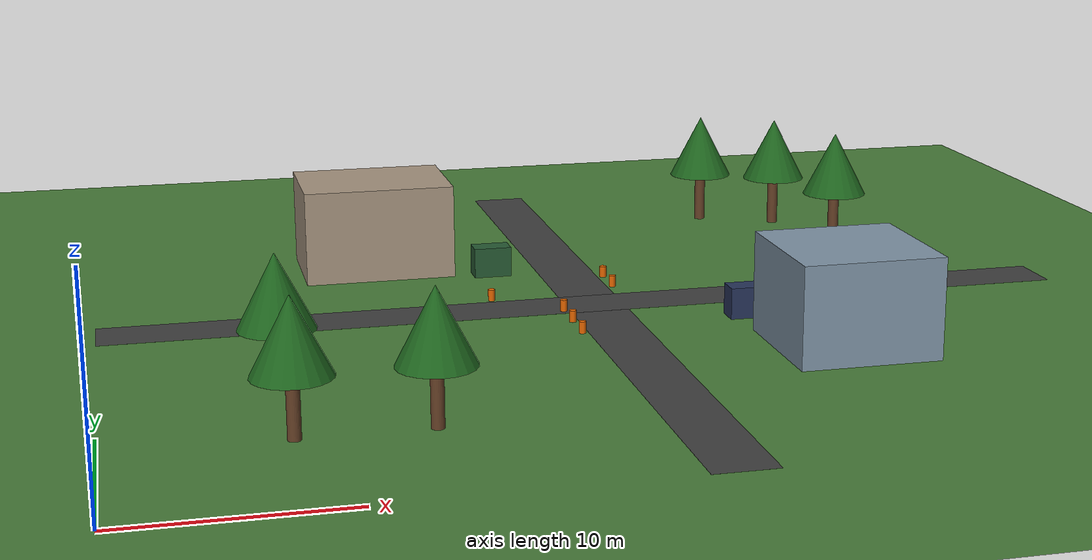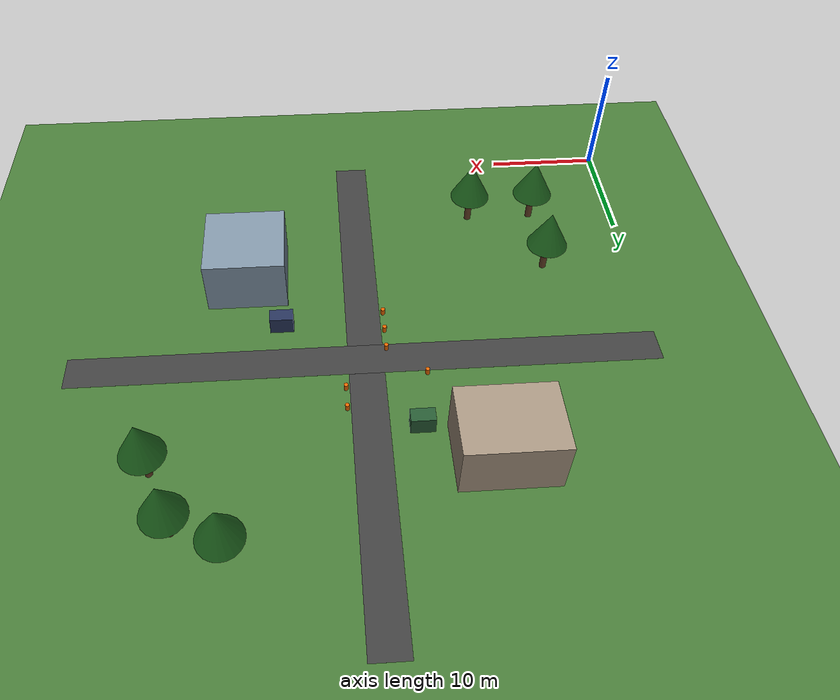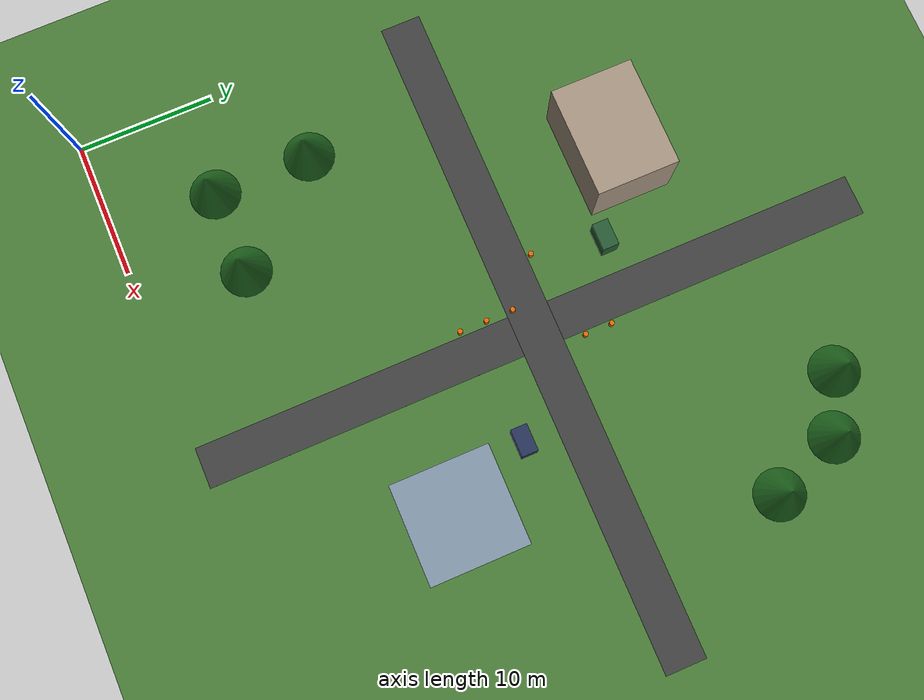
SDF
<sdf version="1.9">
 <world name="outdoor">
  <plugin filename="gz-sim-physics-system" name="gz::sim::systems::Physics"/>
  <plugin filename="gz-sim-user-commands-system" name="gz::sim::systems::UserCommands"/>
  <plugin filename="gz-sim-scene-broadcaster-system" name="gz::sim::systems::SceneBroadcaster"/>
  <plugin filename="gz-sim-sensors-system" name="gz::sim::systems::Sensors">
   <render_engine>ogre2</render_engine>
  </plugin>
  <plugin filename="gz-sim-imu-system" name="gz::sim::systems::Imu"/>
  <gravity>0 0 -9.81</gravity>
  <physics name="outdoor_physics" type="ode">
   <max_step_size>0.002</max_step_size>
   <real_time_factor>1.0</real_time_factor>
   <real_time_update_rate>500</real_time_update_rate>
  </physics>
  <scene>
   <ambient>0.5 0.5 0.5 1.0</ambient>
   <background>0.55 0.65 0.75 1.0</background>
   <shadows>true</shadows>
   <grid>false</grid>
  </scene>
  <light name="sun" type="directional">
   <pose>25 25 30 0.45 -0.35 0.2</pose>
   <direction>-0.4 0.3 -0.85</direction>
   <diffuse>0.95 0.95 0.90 1.0</diffuse>
   <specular>0.4 0.4 0.4 1.0</specular>
   <attenuation><range>100</range></attenuation>
  </light>
  <model name="outdoor_ground">
   <static>true</static>
   <pose>25 25 0 0 0 0</pose>
   <link name="ground_link">
    <collision name="collision">
     <geometry><plane><normal>0 0 1</normal><size>60 60</size></plane></geometry>
     <surface><friction><ode><mu>1.0</mu><mu2>1.0</mu2></ode></friction></surface>
    </collision>
    <visual name="grass_visual">
     <geometry><plane><normal>0 0 1</normal><size>60 60</size></plane></geometry>
     <material><ambient>0.22 0.38 0.18 1</ambient><diffuse>0.28 0.48 0.22 1</diffuse></material>
    </visual>
   </link>
  </model>
  <model name="road_ns">
   <static>true</static>
   <pose>25 25 0.002 0 0 0</pose>
   <link name="road_ns_link">
    <visual name="visual">
     <geometry><plane><normal>0 0 1</normal><size>3 50</size></plane></geometry>
     <material><ambient>0.15 0.15 0.15 1</ambient><diffuse>0.25 0.25 0.25 1</diffuse></material>
    </visual>
   </link>
  </model>
  <model name="road_ew">
   <static>true</static>
   <pose>25 25 0.003 0 0 0</pose>
   <link name="road_ew_link">
    <visual name="visual">
     <geometry><plane><normal>0 0 1</normal><size>50 3</size></plane></geometry>
     <material><ambient>0.15 0.15 0.15 1</ambient><diffuse>0.25 0.25 0.25 1</diffuse></material>
    </visual>
   </link>
  </model>
  <model name="house_1">
   <static>true</static>
   <pose>15 35 2.5 0 0 0</pose>
   <link name="link">
    <collision name="collision">
     <geometry><box><size>8 6 5</size></box></geometry>
     <surface><friction><ode><mu>1.0</mu><mu2>1.0</mu2></ode></friction></surface>
    </collision>
    <visual name="visual">
     <geometry><box><size>8 6 5</size></box></geometry>
     <material><ambient>0.45 0.40 0.35 1</ambient><diffuse>0.65 0.58 0.50 1</diffuse></material>
    </visual>
   </link>
  </model>
  <model name="house_2">
   <static>true</static>
   <pose>35 15 2.5 0 0 0</pose>
   <link name="link">
    <collision name="collision">
     <geometry><box><size>7 7 5</size></box></geometry>
     <surface><friction><ode><mu>1.0</mu><mu2>1.0</mu2></ode></friction></surface>
    </collision>
    <visual name="visual">
     <geometry><box><size>7 7 5</size></box></geometry>
     <material><ambient>0.35 0.40 0.45 1</ambient><diffuse>0.50 0.58 0.65 1</diffuse></material>
    </visual>
   </link>
  </model>
  <model name="cone_1">
   <static>true</static>
   <pose>23.2 20 0.3 0 0 0</pose>
   <link name="l">
    <collision name="c">
     <geometry><cylinder><radius>0.18</radius><length>0.6</length></cylinder></geometry>
    </collision>
    <visual name="v">
     <geometry><cylinder><radius>0.18</radius><length>0.6</length></cylinder></geometry>
     <material><ambient>0.8 0.3 0 1</ambient><diffuse>0.9 0.4 0 1</diffuse></material>
    </visual>
   </link>
  </model>
  <model name="cone_2">
   <static>true</static>
   <pose>23.2 22 0.3 0 0 0</pose>
   <link name="l">
    <collision name="c">
     <geometry><cylinder><radius>0.18</radius><length>0.6</length></cylinder></geometry>
    </collision>
    <visual name="v">
     <geometry><cylinder><radius>0.18</radius><length>0.6</length></cylinder></geometry>
     <material><ambient>0.8 0.3 0 1</ambient><diffuse>0.9 0.4 0 1</diffuse></material>
    </visual>
   </link>
  </model>
  <model name="cone_3">
   <static>true</static>
   <pose>23.2 24 0.3 0 0 0</pose>
   <link name="l">
    <collision name="c">
     <geometry><cylinder><radius>0.18</radius><length>0.6</length></cylinder></geometry>
    </collision>
    <visual name="v">
     <geometry><cylinder><radius>0.18</radius><length>0.6</length></cylinder></geometry>
     <material><ambient>0.8 0.3 0 1</ambient><diffuse>0.9 0.4 0 1</diffuse></material>
    </visual>
   </link>
  </model>
  <model name="cone_4">
   <static>true</static>
   <pose>26.8 28 0.3 0 0 0</pose>
   <link name="l">
    <collision name="c">
     <geometry><cylinder><radius>0.18</radius><length>0.6</length></cylinder></geometry>
    </collision>
    <visual name="v">
     <geometry><cylinder><radius>0.18</radius><length>0.6</length></cylinder></geometry>
     <material><ambient>0.8 0.3 0 1</ambient><diffuse>0.9 0.4 0 1</diffuse></material>
    </visual>
   </link>
  </model>
  <model name="cone_5">
   <static>true</static>
   <pose>26.8 30 0.3 0 0 0</pose>
   <link name="l">
    <collision name="c">
     <geometry><cylinder><radius>0.18</radius><length>0.6</length></cylinder></geometry>
    </collision>
    <visual name="v">
     <geometry><cylinder><radius>0.18</radius><length>0.6</length></cylinder></geometry>
     <material><ambient>0.8 0.3 0 1</ambient><diffuse>0.9 0.4 0 1</diffuse></material>
    </visual>
   </link>
  </model>
  <model name="cone_6">
   <static>true</static>
   <pose>20 26.8 0.3 0 0 0</pose>
   <link name="l">
    <collision name="c">
     <geometry><cylinder><radius>0.18</radius><length>0.6</length></cylinder></geometry>
    </collision>
    <visual name="v">
     <geometry><cylinder><radius>0.18</radius><length>0.6</length></cylinder></geometry>
     <material><ambient>0.8 0.3 0 1</ambient><diffuse>0.9 0.4 0 1</diffuse></material>
    </visual>
   </link>
  </model>
  <model name="dumpster_1">
   <static>true</static>
   <pose>21 32 0.8 0 0 0</pose>
   <link name="l">
    <collision name="c"><geometry><box><size>2.0 1.2 1.6</size></box></geometry></collision>
    <visual name="v">
     <geometry><box><size>2.0 1.2 1.6</size></box></geometry>
     <material><ambient>0.1 0.25 0.15 1</ambient><diffuse>0.15 0.35 0.2 1</diffuse></material>
    </visual>
   </link>
  </model>
  <model name="dumpster_2">
   <static>true</static>
   <pose>32 21 0.8 0 0 0</pose>
   <link name="l">
    <collision name="c"><geometry><box><size>2.0 1.2 1.6</size></box></geometry></collision>
    <visual name="v">
     <geometry><box><size>2.0 1.2 1.6</size></box></geometry>
     <material><ambient>0.1 0.15 0.25 1</ambient><diffuse>0.15 0.2 0.35 1</diffuse></material>
    </visual>
   </link>
  </model>
  <model name="trees_park">
   <static>true</static>
   <link name="link">
    <collision name="t1_c">
     <pose>8 8 2.0 0 0 0</pose>
     <geometry><cylinder><radius>0.3</radius><length>4.0</length></cylinder></geometry>
    </collision>
    <visual name="t1_v">
     <pose>8 8 2.0 0 0 0</pose>
     <geometry><cylinder><radius>0.3</radius><length>4.0</length></cylinder></geometry>
     <material><ambient>0.3 0.2 0.1 1</ambient><diffuse>0.4 0.25 0.15 1</diffuse></material>
    </visual>
    <visual name="t1_fol">
     <pose>8 8 4.5 0 0 0</pose>
     <geometry><cone><radius>1.8</radius><length>3.5</length></cone></geometry>
     <material><ambient>0.08 0.28 0.08 1</ambient><diffuse>0.12 0.40 0.12 1</diffuse></material>
    </visual>
    <collision name="t2_c">
     <pose>8 15 2.0 0 0 0</pose>
     <geometry><cylinder><radius>0.3</radius><length>4.0</length></cylinder></geometry>
    </collision>
    <visual name="t2_v">
     <pose>8 15 2.0 0 0 0</pose>
     <geometry><cylinder><radius>0.3</radius><length>4.0</length></cylinder></geometry>
     <material><ambient>0.3 0.2 0.1 1</ambient><diffuse>0.4 0.25 0.15 1</diffuse></material>
    </visual>
    <visual name="t2_fol">
     <pose>8 15 4.5 0 0 0</pose>
     <geometry><cone><radius>1.8</radius><length>3.5</length></cone></geometry>
     <material><ambient>0.08 0.28 0.08 1</ambient><diffuse>0.12 0.40 0.12 1</diffuse></material>
    </visual>
    <collision name="t3_c">
     <pose>14 8 2.0 0 0 0</pose>
     <geometry><cylinder><radius>0.3</radius><length>4.0</length></cylinder></geometry>
    </collision>
    <visual name="t3_v">
     <pose>14 8 2.0 0 0 0</pose>
     <geometry><cylinder><radius>0.3</radius><length>4.0</length></cylinder></geometry>
     <material><ambient>0.3 0.2 0.1 1</ambient><diffuse>0.4 0.25 0.15 1</diffuse></material>
    </visual>
    <visual name="t3_fol">
     <pose>14 8 4.5 0 0 0</pose>
     <geometry><cone><radius>1.8</radius><length>3.5</length></cone></geometry>
     <material><ambient>0.08 0.28 0.08 1</ambient><diffuse>0.12 0.40 0.12 1</diffuse></material>
    </visual>
    <collision name="t4_c">
     <pose>40 40 2.0 0 0 0</pose>
     <geometry><cylinder><radius>0.3</radius><length>4.0</length></cylinder></geometry>
    </collision>
    <visual name="t4_v">
     <pose>40 40 2.0 0 0 0</pose>
     <geometry><cylinder><radius>0.3</radius><length>4.0</length></cylinder></geometry>
     <material><ambient>0.3 0.2 0.1 1</ambient><diffuse>0.4 0.25 0.15 1</diffuse></material>
    </visual>
    <visual name="t4_fol">
     <pose>40 40 4.5 0 0 0</pose>
     <geometry><cone><radius>1.8</radius><length>3.5</length></cone></geometry>
     <material><ambient>0.08 0.28 0.08 1</ambient><diffuse>0.12 0.40 0.12 1</diffuse></material>
    </visual>
    <collision name="t5_c">
     <pose>42 35 2.0 0 0 0</pose>
     <geometry><cylinder><radius>0.3</radius><length>4.0</length></cylinder></geometry>
    </collision>
    <visual name="t5_v">
     <pose>42 35 2.0 0 0 0</pose>
     <geometry><cylinder><radius>0.3</radius><length>4.0</length></cylinder></geometry>
     <material><ambient>0.3 0.2 0.1 1</ambient><diffuse>0.4 0.25 0.15 1</diffuse></material>
    </visual>
    <visual name="t5_fol">
     <pose>42 35 4.5 0 0 0</pose>
     <geometry><cone><radius>1.8</radius><length>3.5</length></cone></geometry>
     <material><ambient>0.08 0.28 0.08 1</ambient><diffuse>0.12 0.40 0.12 1</diffuse></material>
    </visual>
    <collision name="t6_c">
     <pose>36 42 2.0 0 0 0</pose>
     <geometry><cylinder><radius>0.3</radius><length>4.0</length></cylinder></geometry>
    </collision>
    <visual name="t6_v">
     <pose>36 42 2.0 0 0 0</pose>
     <geometry><cylinder><radius>0.3</radius><length>4.0</length></cylinder></geometry>
     <material><ambient>0.3 0.2 0.1 1</ambient><diffuse>0.4 0.25 0.15 1</diffuse></material>
    </visual>
    <visual name="t6_fol">
     <pose>36 42 4.5 0 0 0</pose>
     <geometry><cone><radius>1.8</radius><length>3.5</length></cone></geometry>
     <material><ambient>0.08 0.28 0.08 1</ambient><diffuse>0.12 0.40 0.12 1</diffuse></material>
    </visual>
   </link>
  </model>
 </world>
</sdf>
